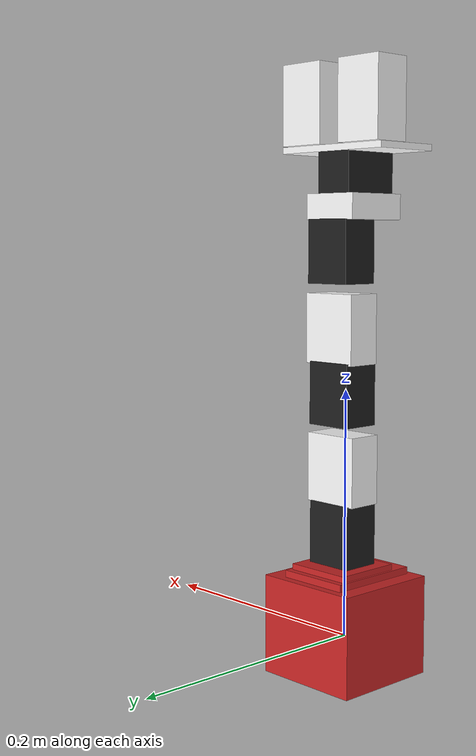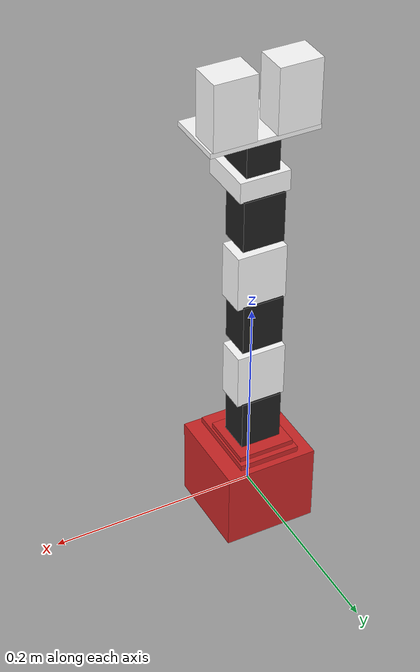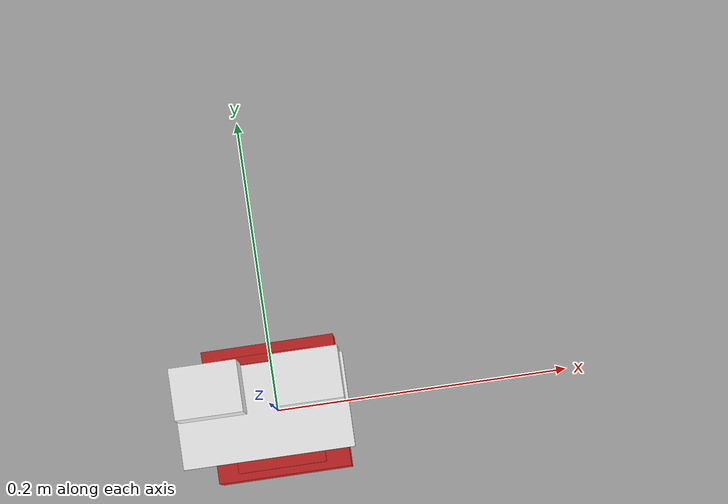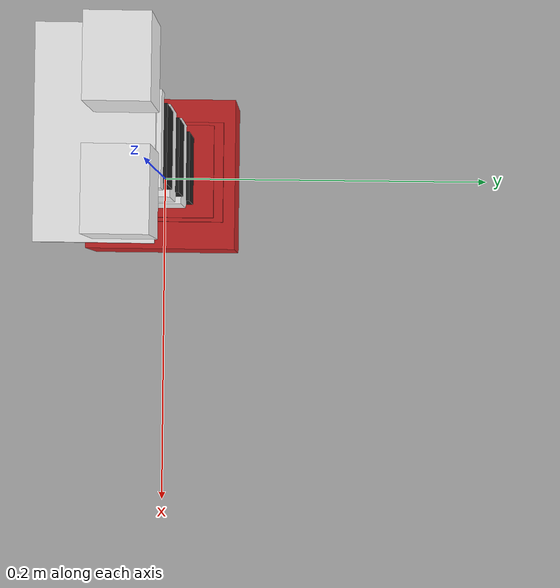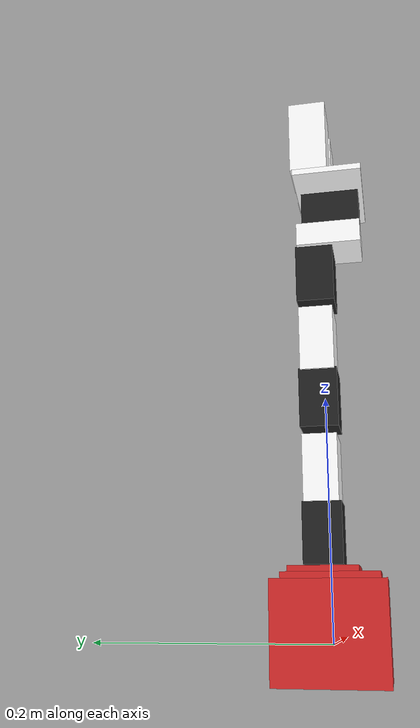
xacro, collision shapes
<?xml version="1.0"?>

<!-- arm.urdf.xacro for step 3d -->

<robot name="arm" xmlns:xacro="http://www.ros.org/wiki/xacro">
  <!-- Include arm.gazebo.xacro -->
  <xacro:include filename="$(find arm_description)/urdf/arm.gazebo.xacro"/>
 <!-- Include arm.transmission.xacro -->
  <xacro:include filename="$(find arm_description)/urdf/arm.transmission.xacro"/>
  <!-- Include camera.xacro -->
  <xacro:include filename="$(find arm_description)/urdf/camera.xacro"/>

    <link name="base_link">
      <visual>
        <geometry>
          <mesh filename="package://arm_description/meshes/base_link.stl" scale="0.001 0.001 0.001"/>
        </geometry>
        <origin rpy="0 0 0" xyz="0 0 0"/>
      </visual>
      <collision>
        <geometry>
          <box size="0.0904 0.0901 0.08"/>
        </geometry>
        <origin rpy="0 0 0" xyz="0 0 0.01"/>
      </collision>
      <inertial>
        <mass value="0.1"/>
        <inertia ixx="1.06682889e+08" ixy="0.0" ixz="0.0" iyy="9.92165844e+07" iyz="0.0" izz="1.26939175e+08"/>
      </inertial>
    </link>

    <!-- The camera_link and the fixed camera_joint are now in the camera.xacro file -->

    <joint name="base_1_2" type="fixed">
      <parent link="base_link"/>
      <child link="base_turn"/>
      <origin xyz="-0.0011 -0.011 0.05"/>
    </joint>

    <link name="base_turn">
      <visual>
        <geometry>
          <mesh filename="package://arm_description/meshes/base_turn.stl" scale="0.001 0.001 0.001"/>
        </geometry>
        <origin rpy="0 0 0" xyz="0 0 0"/>
      </visual>
      <collision>
        <geometry>
            <box size = "0.06 0.0782 0.007"/>
          </geometry>
        <origin rpy="0 0 0" xyz="0 0.01 0.0022"/>
      </collision>
      <inertial>
        <mass value="0.1"/>
        <inertia ixx="1.35223008e+07" ixy="0.0" ixz="0.0" iyy="8.13814925e+06" iyz="0.0" izz="2.14903814e+07"/>
      </inertial>
    </link>

    <joint name="j0" type="revolute">
      <parent link="base_turn"/>
      <child link="base_turn_rot"/>
      <origin xyz="-0.0 0.0155 0.013" rpy = "0 0 -1.57"/>
      <axis xyz="0 0 1" />
      <limit effort="300" velocity="0.1" lower="-2.57" upper="2.57"/>
    </joint>

    <link name="base_turn_rot">
      <visual>
        <geometry>
          <mesh filename="package://arm_description/meshes/base_turn_table_rot.stl" scale="0.001 0.001 0.001"/>
        </geometry>

      </visual>
      <collision>
        <geometry>
            <box size="0.056 0.0556 0.005"/>
          </geometry>
        <origin rpy="0 0 0" xyz="0 0 -0.005"/>
      </collision>

      <inertial>
        <mass value="0.1"/>
        <inertia ixx="3.41992001e+06" ixy="0.0" ixz="0.0" iyy="2.85587836e+06" iyz="0.0" izz="5.84313870e+06"/>
      </inertial>
    </link>

    <joint name="base_turn_rot_dyn2" type="fixed">
      <parent link="base_turn_rot"/>
      <child link="dyn2"/>
      <origin xyz="0 0 0.0385" rpy="0 1.57 1.57 "/>
    </joint>

    <link name="dyn2">
      <visual>
        <geometry>
          <mesh filename="package://arm_description/meshes/dyn.stl" scale="0.01 0.01 0.01"/>
        </geometry>

        <origin rpy="0 0 0" xyz="0 0 0"/>
      </visual>
      <collision>
        <geometry>
            <box size="0.05 0.032 0.04"/>
          </geometry>
        <origin rpy="0 0 0" xyz="0.015 0 0"/>
      </collision>
      <inertial>
        <mass value="0.1"/>
        <inertia ixx="6.90013881e+01" ixy="0.0" ixz="0.0" iyy="1.24554875e+02" iyz="0.0" izz="1.04295793e+02"/>
      </inertial>
    </link>

    <joint name="j1" type="revolute">
      <parent link="dyn2"/>
      <child link="dyn2_r"/>
      <origin xyz="0 0 0.0" rpy="0 0 0"/>
      <axis xyz="0 0 1" />
      <limit effort="300" velocity="0.1" lower="-3.14" upper="3.14"/>
    </joint>

    <link name="dyn2_r">

    </link>

    <joint name="dyn2_f4" type="fixed">
      <parent link="dyn2_r"/>
      <child link="f4"/>
      <origin xyz="-0.047 0.0 -0.003" rpy="0 1.57 1.57"/>
    </joint>

    <link name="f4">
      <visual>
        <geometry>
          <mesh filename="package://arm_description/meshes/f4_n_f3.stl" scale="0.001 0.001 0.001"/>
        </geometry>
        <origin rpy="0 0 0" xyz="0 0 0"/>
        <material name="white">
          <color rgba="1 1 1 1"/>
        </material>
      </visual>
      <collision>
        <geometry>
              <box size="0.048 0.0550 0.0286"/>
          </geometry>
        <origin rpy="0 0 0" xyz="-0.0035 -0.010 0"/>
      </collision>
      <inertial>
        <mass value="0.1"/>
        <inertia ixx="6.90013881e+01" ixy="0.0" ixz="0.0" iyy="1.24554875e+02" iyz="0.0" izz="1.04295793e+02"/>
      </inertial>
    </link>

    <joint name="d4_dyn3" type="fixed">
      <parent link="f4"/>
      <child link="dyn3"/>
      <origin xyz="-0.004 0.0645 0 " rpy="-1.57 3.14 1.57"/>
    </joint>

    <link name="dyn3">
      <visual>
        <geometry>
          <mesh filename="package://arm_description/meshes/dyn.stl" scale="0.01 0.01 0.01"/>
        </geometry>
        <origin rpy="0 0 0" xyz="0 0 0"/>
      </visual>
      <collision>
        <geometry>
            <box size="0.05 0.032 0.04"/>
          </geometry>
        <origin rpy="0 0 0" xyz="0.015 0 0"/>
      </collision>
      <inertial>
        <mass value="0.1"/>
        <inertia ixx="6.90013881e+01" ixy="0.0" ixz="0.0" iyy="1.24554875e+02" iyz="0.0" izz="1.04295793e+02"/>
      </inertial>
    </link>

    <joint name="j2" type="revolute">
      <parent link="dyn3"/>
      <child link="dyn3_r"/>
      <origin xyz="0 0 0.0" rpy="0 0 0"/>
      <axis xyz="0 0 1" />
      <limit effort="300" velocity="0.1" lower="-3.14" upper="3.14"/>
    </joint>

    <link name="dyn3_r">

    </link>

    <joint name="dyn3_f5" type="fixed">
      <parent link="dyn3_r"/>
      <child link="f5"/>
      <origin xyz="-0.046 -0.0 -0.002" rpy="1.57 1.57 3.1415 "/>
    </joint>

    <link name="f5">
      <visual>
        <geometry>
          <mesh filename="package://arm_description/meshes/f4_n_f3.stl" scale="0.001 0.001 0.001"/>
        </geometry>
        <origin rpy="0 0 0" xyz="0 0 0"/>
        <material name="white">
          <color rgba="1 1 1 1"/>
        </material>
      </visual>
      <collision>
        <geometry>
            <box size="0.048 0.0550 0.0286"/>
          </geometry>
        <origin rpy="0 0 0" xyz="-0.0035 -0.010 0"/>
      </collision>

      <inertial>
        <mass value="0.1"/>
        <inertia ixx="1.13130695e+07" ixy="0.0" ixz="0.0" iyy="8.78052401e+06" iyz="0.0" izz="1.72940286e+07"/>
      </inertial>
    </link>

    <joint name="f5_dyn4" type="fixed">
      <parent link="f5"/>
      <child link="dyn4"/>
      <origin xyz="-0.004 0.065 -0.0" rpy="-1.57 3.1415 1.57 "/>
    </joint>

    <link name="dyn4">
      <visual>
        <geometry>
          <mesh filename="package://arm_description/meshes/dyn.stl" scale="0.01 0.01 0.01"/>
        </geometry>

        <origin rpy="0 0 0" xyz="0 0 0"/>
      </visual>
      <collision>
        <geometry>
            <box size="0.05 0.032 0.04"/>
          </geometry>
        <origin rpy="0 0 0" xyz="0.015 0 0"/>
      </collision>

      <inertial>
        <mass value="0.1"/>
        <inertia ixx="6.90013881e+01" ixy="0.0" ixz="0.0" iyy="1.24554875e+02" iyz="0.0" izz="1.04295793e+02"/>
      </inertial>
    </link>

    <joint name="j3" type="revolute">
      <parent link="dyn4"/>
      <child link="dyn4_r"/>
      <origin xyz="0 0 0.0" rpy="0 0 0"/>
      <axis xyz="0 0 1" />
      <limit effort="300" velocity="0.1" lower="-3.14" upper="3.14"/>
    </joint>

    <link name="dyn4_r">

    </link>

    <joint name="f5_wrist" type="fixed">
      <parent link="dyn4_r"/>
      <child link="wrist"/>
      <origin xyz="-0.017 -0.013 0.003" rpy="1.57 1.57 -1.57"/>
    </joint>

    <link name="wrist">
      <visual>
        <geometry>
          <mesh filename="package://arm_description/meshes/wrist.stl" scale="0.001 0.001 0.001"/>
        </geometry>
        <origin rpy="0 0 0" xyz="0 0 0"/>
        <material name="white">
          <color rgba="1 1 1 1"/>
        </material>
      </visual>
      <collision>
        <geometry>
            <box size="0.0482 0.0547 0.020"/>
        </geometry>
        <origin rpy="0 0 0" xyz="0.004 0 0.0025"/>
      </collision>

      <inertial>
        <mass value="0.1"/>
        <inertia ixx="6.90013881e+01" ixy="0.0" ixz="0.0" iyy="1.24554875e+02" iyz="0.0" izz="1.04295793e+02"/>
      </inertial>
    </link>

    <joint name="wrist_dyn5" type="fixed">
      <parent link="wrist"/>
      <child link="dyn5"/>
      <origin xyz="0.0038 -0.013 0.0275" rpy="0 0 1.57"/>
    </joint>

      <link name="dyn5">
      <visual>
        <geometry>
          <mesh filename="package://arm_description/meshes/dyn.stl" scale="0.01 0.01 0.01"/>
        </geometry>
        <origin rpy="0 0 0" xyz="0 0 0"/>
      </visual>
      <collision>
        <geometry>
           <box size="0.05 0.032 0.035"/>
          </geometry>
        <origin rpy="0 0 0" xyz="0.015 0 0.0001"/>
      </collision>

      <inertial>
        <mass value="0.1"/>
        <inertia ixx="6.90013881e+01" ixy="0.0" ixz="0.0" iyy="1.24554875e+02" iyz="0.0" izz="1.04295793e+02"/>
      </inertial>
    </link>

    <joint name="dyn5_dyn5_r" type="fixed">
      <parent link="dyn5"/>
      <child link="dyn5_r"/>
      <origin xyz="0 0 0.0" rpy="0 0 0"/>
      <axis xyz="0 0 1" />
      <limit effort="300" velocity="0.1" lower="-3.14" upper="3.14"/>
    </joint>

    <link name="dyn5_r">

    </link>

    <joint name="wrist_rotate_dyn5" type="fixed">
      <parent link="dyn5_r"/>
      <child link="crawer_base"/>
      <origin xyz="0.015 0 0.019" rpy="0 0 1.57"/>
    </joint>

    <link name="crawer_base">
      <visual>
        <geometry>
          <mesh filename="package://arm_description/meshes/the_crawer_base.stl" scale="0.001 0.001 0.001"/>
        </geometry>
        <origin rpy="0 0 0" xyz="0 0 0"/>
        <material name="white">
          <color rgba="1 1 1 1"/>
        </material>
      </visual>
      <collision>
        <geometry>
              <box size="0.1044 0.0578 0.005"/>
          </geometry>
        <origin rpy="0 0 0" xyz="0 0 0.0005"/>
      </collision>

      <inertial>
        <mass value="0.1"/>
        <inertia ixx="6.90013881e+01" ixy="0.0" ixz="0.0" iyy="1.24554875e+02" iyz="0.0" izz="1.04295793e+02"/>
      </inertial>
    </link>

    <joint name="crawer_base_crawer_left" type="fixed">
      <parent link="crawer_base"/>
      <child link="crawer_left"/>
      <origin xyz="-0.03 0.015 0.01" rpy="0 -1.57 0"/>
    </joint>

    <link name="crawer_left">
      <visual>
        <geometry>
          <mesh filename="package://arm_description/meshes/the_crawer.stl" scale="0.001 0.001 0.001"/>
        </geometry>
        <origin rpy="0 0 0" xyz="0 0 0"/>
        <material name="white">
          <color rgba="1 1 1 1"/>
        </material>
      </visual>
      <collision>
        <geometry>
             <box size="0.0629 0.0312 0.0408"/>
          </geometry>
        <origin rpy="0 0 0" xyz="0.025 0 0"/>
      </collision>

      <inertial>
        <mass value="0.1"/>
        <inertia ixx="6.90013881e+01" ixy="0.0" ixz="0.0" iyy="1.24554875e+02" iyz="0.0" izz="1.04295793e+02"/>
      </inertial>
    </link>

    <joint name="crawer_base_crawer_right" type="fixed">
      <parent link="crawer_base"/>
      <child link="crawer_right"/>
      <origin xyz="0.03 0.015 0.01" rpy="3.1415 -1.57 0"/>
    </joint>

    <link name="crawer_right">
      <visual>
        <geometry>
          <mesh filename="package://arm_description/meshes/the_crawer.stl" scale="0.001 0.001 0.001"/>
        </geometry>
        <origin rpy="0 0 0" xyz="0 0 0"/>
        <material name="white">
          <color rgba="1 1 1 1"/>
        </material>
      </visual>
      <collision>
        <geometry>
             <box size="0.0629 0.0312 0.0408"/>
          </geometry>
        <origin rpy="0 0 0" xyz="0.025 0 0"/>
      </collision>

      <inertial>
        <mass value="0.1"/>
        <inertia ixx="6.90013881e+01" ixy="0.0" ixz="0.0" iyy="1.24554875e+02" iyz="0.0" izz="1.04295793e+02"/>
      </inertial>
    </link>

  <xacro:arm_gazebo robot_name="arm"/>
  <xacro:arm_transmission hardware_interface="PositionJointInterface"/>
  <xacro:camera/>

</robot>

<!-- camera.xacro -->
<!-- camera.xacro file for step 4 (camera moved to the base) -->

<robot xmlns:xacro="http://www.ros.org/wiki/xacro">
  <xacro:macro name="camera">

   <!-- Definition of the camera_link and the camera_joint -->

     <joint name="camera_joint" type="fixed">
      <parent link="base_link"/>
      <child link="camera_link"/>
      <origin xyz="0 0 0" rpy="0 0 0"/>
    </joint>

    <link name="camera_link">
      <visual>
        <geometry>
         <box size="0.0225 0.0225 0.0225"/>
        </geometry>
        <origin rpy="0 0 0" xyz="0 0 -0.02"/>
      </visual>
      <collision>
        <geometry>
            <box size="0.0225 0.0225 0.0225"/>
          </geometry>
        <origin rpy="0 0 0" xyz="0 0 -0.02"/>
      </collision>
    </link>

    <!-- Camera Sensor for Gazebo -->

      <gazebo reference="camera_link">
     <sensor type="camera" name="camera1">
       <update_rate>30.0</update_rate>
       <camera name="head">
         <horizontal_fov>1.3962634</horizontal_fov>
         <image>
           <width>800</width> <height>800</height> <format>
          R8G8B8</format>
         </image>
         <clip>
            <near>0.02</near> <far>300</far>
         </clip>
         <noise>
           <type>gaussian</type> <mean>0.0</mean> <stddev>0.007
          </stddev>
         </noise>
       </camera>
       <plugin name="camera_controller" filename="libgazebo_ros_camera.so">
             <alwaysOn>true</alwaysOn>
             <updateRate>0.0</updateRate>
             <cameraName>camera</cameraName>
             <imageTopicName>image_raw</imageTopicName>
             <cameraInfoTopicName>camera_info</cameraInfoTopicName>
             <frameName>camera_link_optical</frameName>
             <hackBaseline>0.0</hackBaseline>
             <distortionK1>0.0</distortionK1>
             <distortionK2>0.0</distortionK2>
             <distortionK3>0.0</distortionK3>
             <distortionT1>0.0</distortionT1>
             <distortionT2>0.0</distortionT2>
             <CxPrime>0</CxPrime>
             <Cx>0.0</Cx>
             <Cy>0.0</Cy>
             <focalLength>0.0</focalLength>
       </plugin>
      </sensor>
    </gazebo>

     </xacro:macro>

</robot>
